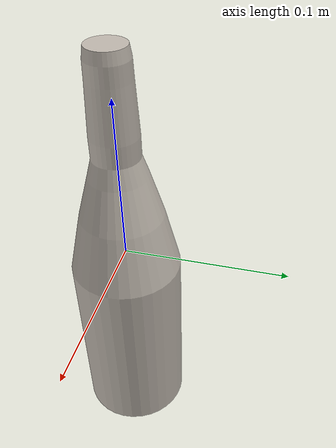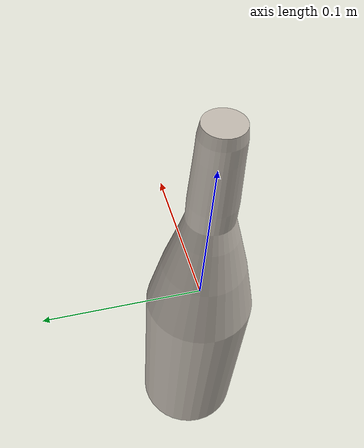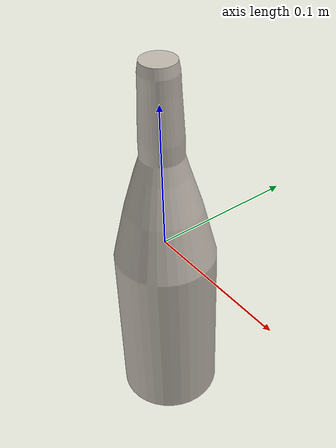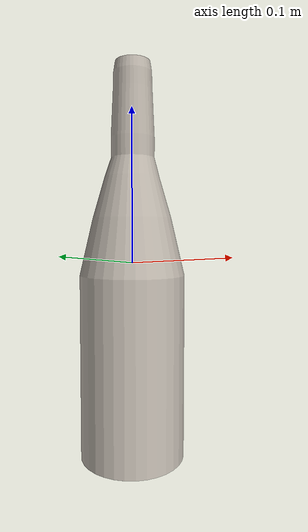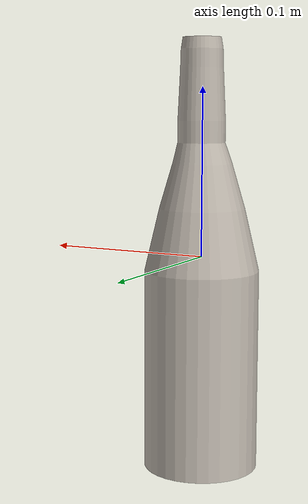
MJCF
<mujoco model="wine_23">
  <asset>
    <mesh file="visual/model_normalized_0.obj" name="model_normalized_0_vis" scale="0.25600000000000006 0.25600000000000006 0.25600000000000006" refquat="1.0 0.0 0.0 0.0" />
    <mesh file="collision/model_normalized_collision_22.obj" name="model_normalized_collision_22._coll" scale="0.25600000000000006 0.25600000000000006 0.25600000000000006" refquat="1.0 0.0 0.0 0.0" />
    <mesh file="collision/model_normalized_collision_23.obj" name="model_normalized_collision_23._coll" scale="0.25600000000000006 0.25600000000000006 0.25600000000000006" refquat="1.0 0.0 0.0 0.0" />
    <mesh file="collision/model_normalized_collision_21.obj" name="model_normalized_collision_21._coll" scale="0.25600000000000006 0.25600000000000006 0.25600000000000006" refquat="1.0 0.0 0.0 0.0" />
    <mesh file="collision/model_normalized_collision_20.obj" name="model_normalized_collision_20._coll" scale="0.25600000000000006 0.25600000000000006 0.25600000000000006" refquat="1.0 0.0 0.0 0.0" />
    <mesh file="collision/model_normalized_collision_24.obj" name="model_normalized_collision_24._coll" scale="0.25600000000000006 0.25600000000000006 0.25600000000000006" refquat="1.0 0.0 0.0 0.0" />
    <mesh file="collision/model_normalized_collision_30.obj" name="model_normalized_collision_30._coll" scale="0.25600000000000006 0.25600000000000006 0.25600000000000006" refquat="1.0 0.0 0.0 0.0" />
    <mesh file="collision/model_normalized_collision_18.obj" name="model_normalized_collision_18._coll" scale="0.25600000000000006 0.25600000000000006 0.25600000000000006" refquat="1.0 0.0 0.0 0.0" />
    <mesh file="collision/model_normalized_collision_19.obj" name="model_normalized_collision_19._coll" scale="0.25600000000000006 0.25600000000000006 0.25600000000000006" refquat="1.0 0.0 0.0 0.0" />
    <mesh file="collision/model_normalized_collision_31.obj" name="model_normalized_collision_31._coll" scale="0.25600000000000006 0.25600000000000006 0.25600000000000006" refquat="1.0 0.0 0.0 0.0" />
    <mesh file="collision/model_normalized_collision_25.obj" name="model_normalized_collision_25._coll" scale="0.25600000000000006 0.25600000000000006 0.25600000000000006" refquat="1.0 0.0 0.0 0.0" />
    <mesh file="collision/model_normalized_collision_27.obj" name="model_normalized_collision_27._coll" scale="0.25600000000000006 0.25600000000000006 0.25600000000000006" refquat="1.0 0.0 0.0 0.0" />
    <mesh file="collision/model_normalized_collision_26.obj" name="model_normalized_collision_26._coll" scale="0.25600000000000006 0.25600000000000006 0.25600000000000006" refquat="1.0 0.0 0.0 0.0" />
    <mesh file="collision/model_normalized_collision_9.obj" name="model_normalized_collision_9._coll" scale="0.25600000000000006 0.25600000000000006 0.25600000000000006" refquat="1.0 0.0 0.0 0.0" />
    <mesh file="collision/model_normalized_collision_8.obj" name="model_normalized_collision_8._coll" scale="0.25600000000000006 0.25600000000000006 0.25600000000000006" refquat="1.0 0.0 0.0 0.0" />
    <mesh file="collision/model_normalized_collision_6.obj" name="model_normalized_collision_6._coll" scale="0.25600000000000006 0.25600000000000006 0.25600000000000006" refquat="1.0 0.0 0.0 0.0" />
    <mesh file="collision/model_normalized_collision_7.obj" name="model_normalized_collision_7._coll" scale="0.25600000000000006 0.25600000000000006 0.25600000000000006" refquat="1.0 0.0 0.0 0.0" />
    <mesh file="collision/model_normalized_collision_5.obj" name="model_normalized_collision_5._coll" scale="0.25600000000000006 0.25600000000000006 0.25600000000000006" refquat="1.0 0.0 0.0 0.0" />
    <mesh file="collision/model_normalized_collision_4.obj" name="model_normalized_collision_4._coll" scale="0.25600000000000006 0.25600000000000006 0.25600000000000006" refquat="1.0 0.0 0.0 0.0" />
    <mesh file="collision/model_normalized_collision_0.obj" name="model_normalized_collision_0._coll" scale="0.25600000000000006 0.25600000000000006 0.25600000000000006" refquat="1.0 0.0 0.0 0.0" />
    <mesh file="collision/model_normalized_collision_1.obj" name="model_normalized_collision_1._coll" scale="0.25600000000000006 0.25600000000000006 0.25600000000000006" refquat="1.0 0.0 0.0 0.0" />
    <mesh file="collision/model_normalized_collision_3.obj" name="model_normalized_collision_3._coll" scale="0.25600000000000006 0.25600000000000006 0.25600000000000006" refquat="1.0 0.0 0.0 0.0" />
    <mesh file="collision/model_normalized_collision_2.obj" name="model_normalized_collision_2._coll" scale="0.25600000000000006 0.25600000000000006 0.25600000000000006" refquat="1.0 0.0 0.0 0.0" />
    <mesh file="collision/model_normalized_collision_17.obj" name="model_normalized_collision_17._coll" scale="0.25600000000000006 0.25600000000000006 0.25600000000000006" refquat="1.0 0.0 0.0 0.0" />
    <mesh file="collision/model_normalized_collision_16.obj" name="model_normalized_collision_16._coll" scale="0.25600000000000006 0.25600000000000006 0.25600000000000006" refquat="1.0 0.0 0.0 0.0" />
    <mesh file="collision/model_normalized_collision_28.obj" name="model_normalized_collision_28._coll" scale="0.25600000000000006 0.25600000000000006 0.25600000000000006" refquat="1.0 0.0 0.0 0.0" />
    <mesh file="collision/model_normalized_collision_14.obj" name="model_normalized_collision_14._coll" scale="0.25600000000000006 0.25600000000000006 0.25600000000000006" refquat="1.0 0.0 0.0 0.0" />
    <mesh file="collision/model_normalized_collision_15.obj" name="model_normalized_collision_15._coll" scale="0.25600000000000006 0.25600000000000006 0.25600000000000006" refquat="1.0 0.0 0.0 0.0" />
    <mesh file="collision/model_normalized_collision_29.obj" name="model_normalized_collision_29._coll" scale="0.25600000000000006 0.25600000000000006 0.25600000000000006" refquat="1.0 0.0 0.0 0.0" />
    <mesh file="collision/model_normalized_collision_11.obj" name="model_normalized_collision_11._coll" scale="0.25600000000000006 0.25600000000000006 0.25600000000000006" refquat="1.0 0.0 0.0 0.0" />
    <mesh file="collision/model_normalized_collision_10.obj" name="model_normalized_collision_10._coll" scale="0.25600000000000006 0.25600000000000006 0.25600000000000006" refquat="1.0 0.0 0.0 0.0" />
    <mesh file="collision/model_normalized_collision_12.obj" name="model_normalized_collision_12._coll" scale="0.25600000000000006 0.25600000000000006 0.25600000000000006" refquat="1.0 0.0 0.0 0.0" />
    <mesh file="collision/model_normalized_collision_13.obj" name="model_normalized_collision_13._coll" scale="0.25600000000000006 0.25600000000000006 0.25600000000000006" refquat="1.0 0.0 0.0 0.0" />
    <texture type="2d" name="image0" file="visual/image0.png" />
    <material name="Materiale.001" texture="image0" specular="0.5" shininess="0.15999998099999999" />
  </asset>
  <default>
    <default class="region">
      <geom group="1" conaffinity="0" contype="0" rgba="0 1 0 0" />
    </default>
  </default>
  <worldbody>
    <body>
      <body name="object">
        <geom solimp="0.998 0.998 0.001" solref="0.001 1" density="100" friction="0.95 0.3 0.1" type="mesh" mesh="model_normalized_0_vis" conaffinity="0" contype="0" group="1" material="Materiale.001" />
        <geom solimp="0.998 0.998 0.001" solref="0.001 1" density="100" friction="0.95 0.3 0.1" type="mesh" mesh="model_normalized_collision_22._coll" group="0" rgba="0.8 0.8 0.8 0.0" />
        <geom solimp="0.998 0.998 0.001" solref="0.001 1" density="100" friction="0.95 0.3 0.1" type="mesh" mesh="model_normalized_collision_23._coll" group="0" rgba="0.8 0.8 0.8 0.0" />
        <geom solimp="0.998 0.998 0.001" solref="0.001 1" density="100" friction="0.95 0.3 0.1" type="mesh" mesh="model_normalized_collision_21._coll" group="0" rgba="0.8 0.8 0.8 0.0" />
        <geom solimp="0.998 0.998 0.001" solref="0.001 1" density="100" friction="0.95 0.3 0.1" type="mesh" mesh="model_normalized_collision_20._coll" group="0" rgba="0.8 0.8 0.8 0.0" />
        <geom solimp="0.998 0.998 0.001" solref="0.001 1" density="100" friction="0.95 0.3 0.1" type="mesh" mesh="model_normalized_collision_24._coll" group="0" rgba="0.8 0.8 0.8 0.0" />
        <geom solimp="0.998 0.998 0.001" solref="0.001 1" density="100" friction="0.95 0.3 0.1" type="mesh" mesh="model_normalized_collision_30._coll" group="0" rgba="0.8 0.8 0.8 0.0" />
        <geom solimp="0.998 0.998 0.001" solref="0.001 1" density="100" friction="0.95 0.3 0.1" type="mesh" mesh="model_normalized_collision_18._coll" group="0" rgba="0.8 0.8 0.8 0.0" />
        <geom solimp="0.998 0.998 0.001" solref="0.001 1" density="100" friction="0.95 0.3 0.1" type="mesh" mesh="model_normalized_collision_19._coll" group="0" rgba="0.8 0.8 0.8 0.0" />
        <geom solimp="0.998 0.998 0.001" solref="0.001 1" density="100" friction="0.95 0.3 0.1" type="mesh" mesh="model_normalized_collision_31._coll" group="0" rgba="0.8 0.8 0.8 0.0" />
        <geom solimp="0.998 0.998 0.001" solref="0.001 1" density="100" friction="0.95 0.3 0.1" type="mesh" mesh="model_normalized_collision_25._coll" group="0" rgba="0.8 0.8 0.8 0.0" />
        <geom solimp="0.998 0.998 0.001" solref="0.001 1" density="100" friction="0.95 0.3 0.1" type="mesh" mesh="model_normalized_collision_27._coll" group="0" rgba="0.8 0.8 0.8 0.0" />
        <geom solimp="0.998 0.998 0.001" solref="0.001 1" density="100" friction="0.95 0.3 0.1" type="mesh" mesh="model_normalized_collision_26._coll" group="0" rgba="0.8 0.8 0.8 0.0" />
        <geom solimp="0.998 0.998 0.001" solref="0.001 1" density="100" friction="0.95 0.3 0.1" type="mesh" mesh="model_normalized_collision_9._coll" group="0" rgba="0.8 0.8 0.8 0.0" />
        <geom solimp="0.998 0.998 0.001" solref="0.001 1" density="100" friction="0.95 0.3 0.1" type="mesh" mesh="model_normalized_collision_8._coll" group="0" rgba="0.8 0.8 0.8 0.0" />
        <geom solimp="0.998 0.998 0.001" solref="0.001 1" density="100" friction="0.95 0.3 0.1" type="mesh" mesh="model_normalized_collision_6._coll" group="0" rgba="0.8 0.8 0.8 0.0" />
        <geom solimp="0.998 0.998 0.001" solref="0.001 1" density="100" friction="0.95 0.3 0.1" type="mesh" mesh="model_normalized_collision_7._coll" group="0" rgba="0.8 0.8 0.8 0.0" />
        <geom solimp="0.998 0.998 0.001" solref="0.001 1" density="100" friction="0.95 0.3 0.1" type="mesh" mesh="model_normalized_collision_5._coll" group="0" rgba="0.8 0.8 0.8 0.0" />
        <geom solimp="0.998 0.998 0.001" solref="0.001 1" density="100" friction="0.95 0.3 0.1" type="mesh" mesh="model_normalized_collision_4._coll" group="0" rgba="0.8 0.8 0.8 0.0" />
        <geom solimp="0.998 0.998 0.001" solref="0.001 1" density="100" friction="0.95 0.3 0.1" type="mesh" mesh="model_normalized_collision_0._coll" group="0" rgba="0.8 0.8 0.8 0.0" />
        <geom solimp="0.998 0.998 0.001" solref="0.001 1" density="100" friction="0.95 0.3 0.1" type="mesh" mesh="model_normalized_collision_1._coll" group="0" rgba="0.8 0.8 0.8 0.0" />
        <geom solimp="0.998 0.998 0.001" solref="0.001 1" density="100" friction="0.95 0.3 0.1" type="mesh" mesh="model_normalized_collision_3._coll" group="0" rgba="0.8 0.8 0.8 0.0" />
        <geom solimp="0.998 0.998 0.001" solref="0.001 1" density="100" friction="0.95 0.3 0.1" type="mesh" mesh="model_normalized_collision_2._coll" group="0" rgba="0.8 0.8 0.8 0.0" />
        <geom solimp="0.998 0.998 0.001" solref="0.001 1" density="100" friction="0.95 0.3 0.1" type="mesh" mesh="model_normalized_collision_17._coll" group="0" rgba="0.8 0.8 0.8 0.0" />
        <geom solimp="0.998 0.998 0.001" solref="0.001 1" density="100" friction="0.95 0.3 0.1" type="mesh" mesh="model_normalized_collision_16._coll" group="0" rgba="0.8 0.8 0.8 0.0" />
        <geom solimp="0.998 0.998 0.001" solref="0.001 1" density="100" friction="0.95 0.3 0.1" type="mesh" mesh="model_normalized_collision_28._coll" group="0" rgba="0.8 0.8 0.8 0.0" />
        <geom solimp="0.998 0.998 0.001" solref="0.001 1" density="100" friction="0.95 0.3 0.1" type="mesh" mesh="model_normalized_collision_14._coll" group="0" rgba="0.8 0.8 0.8 0.0" />
        <geom solimp="0.998 0.998 0.001" solref="0.001 1" density="100" friction="0.95 0.3 0.1" type="mesh" mesh="model_normalized_collision_15._coll" group="0" rgba="0.8 0.8 0.8 0.0" />
        <geom solimp="0.998 0.998 0.001" solref="0.001 1" density="100" friction="0.95 0.3 0.1" type="mesh" mesh="model_normalized_collision_29._coll" group="0" rgba="0.8 0.8 0.8 0.0" />
        <geom solimp="0.998 0.998 0.001" solref="0.001 1" density="100" friction="0.95 0.3 0.1" type="mesh" mesh="model_normalized_collision_11._coll" group="0" rgba="0.8 0.8 0.8 0.0" />
        <geom solimp="0.998 0.998 0.001" solref="0.001 1" density="100" friction="0.95 0.3 0.1" type="mesh" mesh="model_normalized_collision_10._coll" group="0" rgba="0.8 0.8 0.8 0.0" />
        <geom solimp="0.998 0.998 0.001" solref="0.001 1" density="100" friction="0.95 0.3 0.1" type="mesh" mesh="model_normalized_collision_12._coll" group="0" rgba="0.8 0.8 0.8 0.0" />
        <geom solimp="0.998 0.998 0.001" solref="0.001 1" density="100" friction="0.95 0.3 0.1" type="mesh" mesh="model_normalized_collision_13._coll" group="0" rgba="0.8 0.8 0.8 0.0" />
        <geom class="region" name="reg_bbox" type="box" pos="0.00010316544000000153 -0.00010316800000000016 -2.5600000119752057e-09" size="0.033887938560000004 0.033681620480000014 0.12800000000000003" />
      </body>
    <site name="bottom_site" pos="0 0 -0.12800000356146513" size="0.005" rgba="0 0 0 0" /><site name="top_site" pos="0 0 0.12800000168994397" size="0.005" rgba="0 0 0 0" /><site name="horizontal_radius_site" pos="0.033946191727014914 0 0" size="0.005" rgba="0 0 0 0" /></body>
  </worldbody>
</mujoco>
